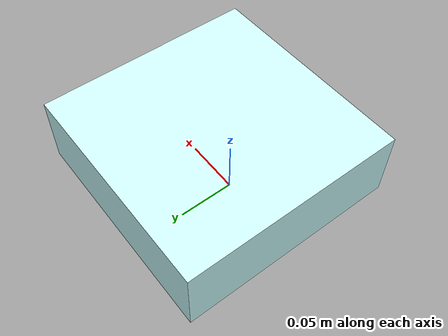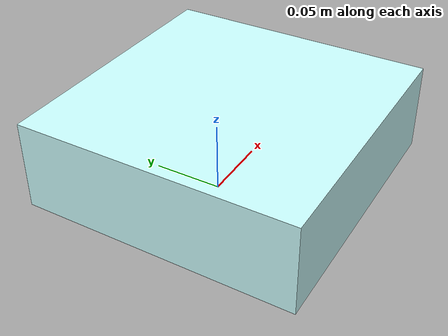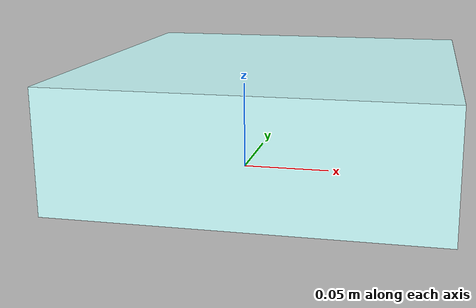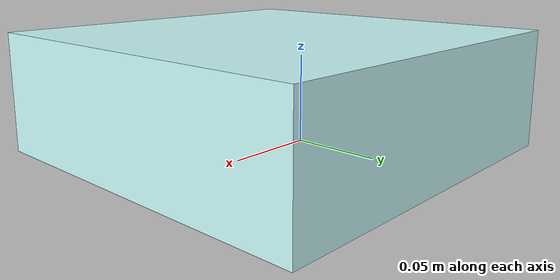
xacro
<?xml version="1.0"?>
<!-- Simple Robot -->
<!--
Copied and modified from ROS1 example -
https://github.com/ros-simulation/gazebo_ros_demos/blob/kinetic-devel/rrbot_description/urdf/rrbot.xacro
-->
<robot xmlns:xacro="http://www.ros.org/wiki/xacro" name="simple_robot">

	<link name="base_link">
	</link>

	<!-- Chassis Link-->
	<joint name="base_chassis_joint" type="fixed">
		<parent link="base_link"/>
		<child link="chassis"/>
		<origin xyz="0.02 0.0 0.0325"/>
	</joint>
	<link name="chassis">

		<visual>
			<origin xyz="0.0 0.0 0.0" rpy="0.0 0.0 0.0"/>
			<geometry>
				<box size="0.2 0.2 0.065"/>
			</geometry>
			<material name="Cyan">
				<color rgba="0.8 1.0 1.0 1.0"/>
			</material>
		</visual>
		<collision>
			<geometry>
				<box size="0.2 0.2 0.065"/>
			</geometry>
		</collision>
	</link>
</robot>
